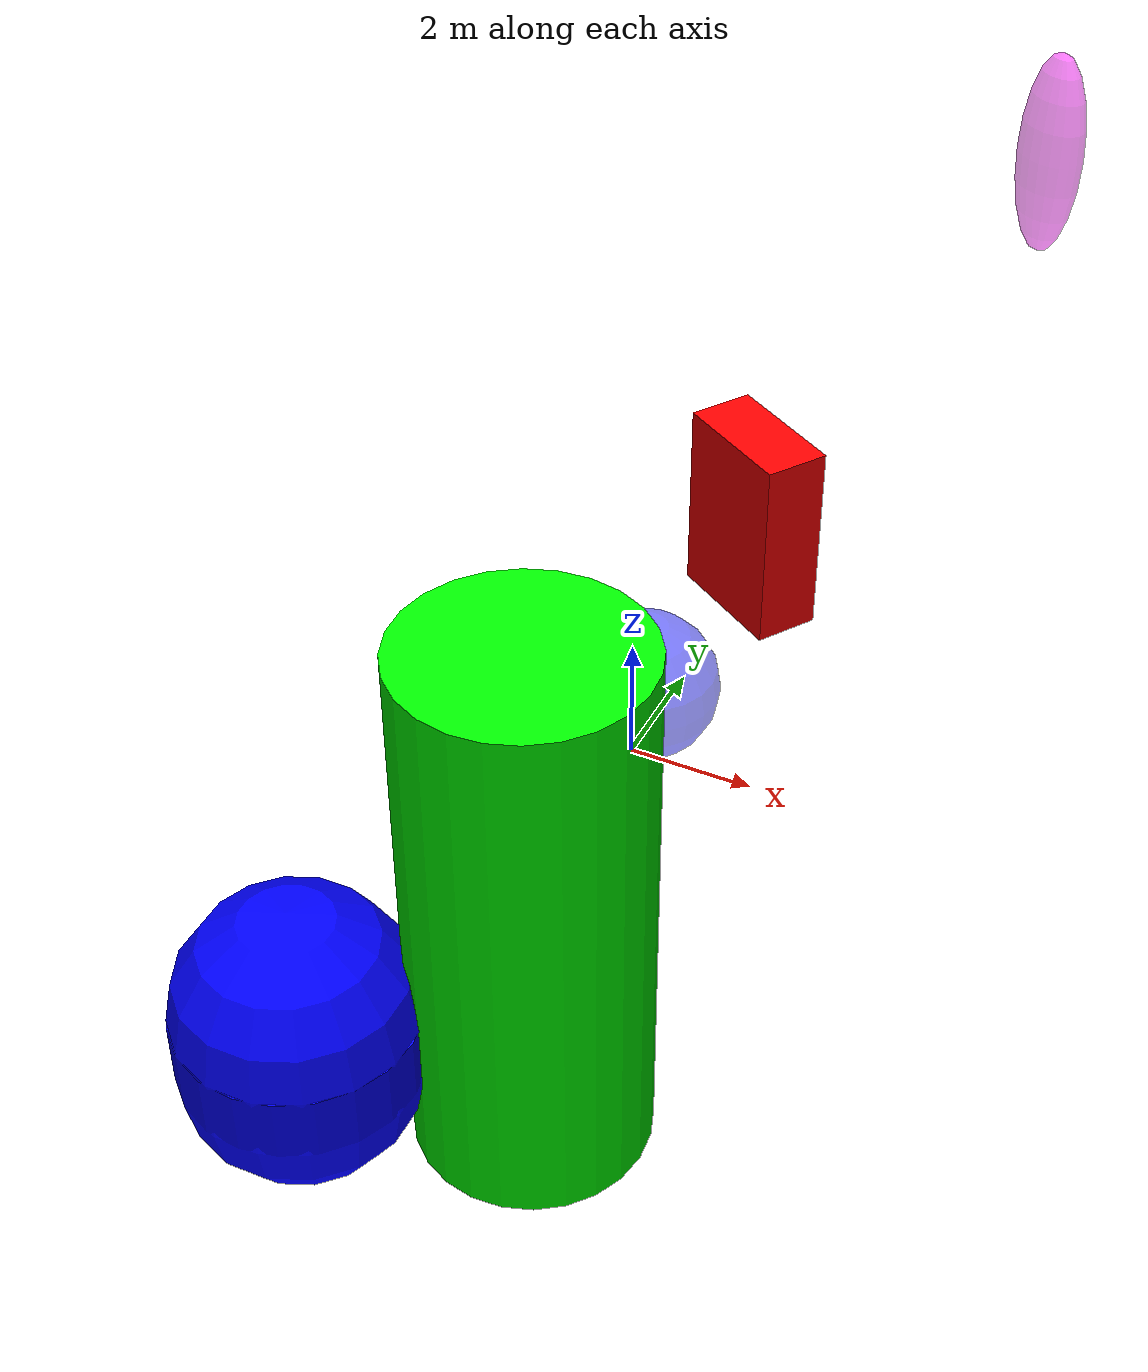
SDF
<?xml version="1.0" ?>
<sdf version="1.6">
  <world name="default">
    <plugin
      filename="gz-sim-apply-link-wrench-system"
      name="gz::sim::systems::ApplyLinkWrench">
    </plugin>

    <physics name="1ms" type="ode">
      <max_step_size>0.001</max_step_size>
      <real_time_factor>1</real_time_factor>
    </physics>

    <plugin
      filename="gz-sim-scene-broadcaster-system"
      name="gz::sim::systems::SceneBroadcaster">
      <!-- Publish at high frequency to test periodic changes -->
      <state_hertz>1000</state_hertz>
    </plugin>

    <gui fullscreen="0">

      <!-- 3D scene -->
      <plugin filename="MinimalScene" name="3D View">
        <gz-gui>
          <title>3D View</title>
          <property type="bool" key="showTitleBar">false</property>
          <property type="string" key="state">docked</property>
        </gz-gui>

        <engine>ogre</engine>
        <scene>scene</scene>
        <ambient_light>0.4 0.4 0.4</ambient_light>
        <background_color>0.8 0.8 0.8</background_color>
        <camera_pose>-6 0 6 0 0.5 0</camera_pose>
      </plugin>

    </gui>

    <light type="directional" name="sun">
      <cast_shadows>true</cast_shadows>
      <pose>0 0 10 0 0 0</pose>
      <diffuse>0.8 0.8 0.8 1</diffuse>
      <specular>0.2 0.2 0.2 1</specular>
      <attenuation>
        <range>1000</range>
        <constant>0.9</constant>
        <linear>0.01</linear>
        <quadratic>0.001</quadratic>
      </attenuation>
      <direction>-0.5 0.1 -0.9</direction>
    </light>

    <model name="box">
      <pose>1 2 3 0 0 1</pose>
      <link name="box_link">
        <inertial>
          <inertia>
            <ixx>1</ixx>
            <ixy>0</ixy>
            <ixz>0</ixz>
            <iyy>1</iyy>
            <iyz>0</iyz>
            <izz>1</izz>
          </inertia>
          <mass>1.0</mass>
        </inertial>
        <pose>0.1 0.1 0.1 0 0 0</pose>
        <collision name="box_collision">
          <pose>0.11 0.11 0.11 0 0 0</pose>
          <geometry>
            <box>
              <size>3 4 5</size>
            </box>
          </geometry>
        </collision>

        <visual name="box_visual">
          <laser_retro>1150</laser_retro>
          <pose>0.12 0.12 0.12 0 0 0</pose>
          <geometry>
            <box>
              <size>1 2 3</size>
            </box>
          </geometry>
          <material>
            <ambient>1 0 0 1</ambient>
            <diffuse>1 0 0 1</diffuse>
            <specular>1 0 0 1</specular>
          </material>
        </visual>
      </link>
    </model>

    <model name="cylinder">
      <pose>-1 -2 -3 0 0 1</pose>
      <link name="cylinder_link">
        <pose>0.2 0.2 0.2 0 0 0</pose>
        <inertial>
          <inertia>
            <ixx>2</ixx>
            <ixy>0</ixy>
            <ixz>0</ixz>
            <iyy>2</iyy>
            <iyz>0</iyz>
            <izz>2</izz>
          </inertia>
          <mass>2.0</mass>
        </inertial>
        <collision name="cylinder_collision">
          <pose>0.21 0.21 0.21 0 0 0</pose>
          <geometry>
            <cylinder>
              <radius>0.2</radius>
              <length>0.1</length>
            </cylinder>
          </geometry>
        </collision>

        <visual name="cylinder_visual">
          <laser_retro>1654</laser_retro>
          <pose>0.22 0.22 0.22 0 0 0</pose>
          <geometry>
            <cylinder>
              <radius>2.1</radius>
              <length>10.2</length>
            </cylinder>
          </geometry>
          <material>
            <ambient>0 1 0 1</ambient>
            <diffuse>0 1 0 1</diffuse>
            <specular>0 1 0 1</specular>
          </material>
        </visual>
      </link>
    </model>

    <model name="sphere">
      <pose>0 0 0 0 0 1</pose>
      <link name="sphere_link">
        <pose>0.3 0.3 0.3 0 0 0</pose>
        <inertial>
          <inertia>
            <ixx>3</ixx>
            <ixy>0</ixy>
            <ixz>0</ixz>
            <iyy>3</iyy>
            <iyz>0</iyz>
            <izz>3</izz>
          </inertia>
          <mass>3.0</mass>
        </inertial>
        <collision name="sphere_collision">
          <pose>0.31 0.31 0.31 0 0 0</pose>
          <geometry>
            <sphere>
              <radius>23.4</radius>
            </sphere>
          </geometry>
        </collision>

        <visual name="sphere_visual">
          <laser_retro>50</laser_retro>
          <pose>0.32 0.32 0.32 0 0 0</pose>
          <transparency>0.5</transparency>
          <cast_shadows>false</cast_shadows>
          <geometry>
            <sphere>
              <radius>1.2</radius>
            </sphere>
          </geometry>
          <material>
            <ambient>0 0 1 1</ambient>
            <diffuse>0 0 1 1</diffuse>
            <specular>0 0 1 1</specular>
          </material>
        </visual>
      </link>
    </model>

    <model name="capsule">
      <pose>-4 -5 -6 0 0 1</pose>
      <link name="capsule_link">
        <pose>0.5 0.5 0.5 0 0 0</pose>
        <inertial>
          <inertia>
            <ixx>2</ixx>
            <ixy>0</ixy>
            <ixz>0</ixz>
            <iyy>2</iyy>
            <iyz>0</iyz>
            <izz>2</izz>
          </inertia>
          <mass>2.0</mass>
        </inertial>
        <collision name="capsule_collision">
          <pose>0.51 0.51 0.51 0 0 0</pose>
          <geometry>
            <capsule>
              <radius>0.23</radius>
              <length>0.14</length>
            </capsule>
          </geometry>
        </collision>
        <visual name="capsule_visual">
          <laser_retro>6.54</laser_retro>
          <pose>0.52 0.52 0.52 0 0 0</pose>
          <geometry>
            <capsule>
              <radius>2.12</radius>
              <length>1.23</length>
            </capsule>
          </geometry>
          <material>
            <ambient>0 0 1 1</ambient>
            <diffuse>0 0 1 1</diffuse>
            <specular>0 1 0 1</specular>
          </material>
        </visual>
      </link>
    </model>

    <model name="ellipsoid">
      <pose>4 5 6 0 0 1</pose>
      <link name="ellipsoid_link">
        <pose>0.8 0.8 0.8 0 0 0</pose>
        <inertial>
          <inertia>
            <ixx>3</ixx>
            <ixy>0</ixy>
            <ixz>0</ixz>
            <iyy>3</iyy>
            <iyz>0</iyz>
            <izz>3</izz>
          </inertia>
          <mass>3.0</mass>
        </inertial>
        <collision name="ellipsoid_collision">
          <pose>0.81 0.81 0.81 0 0 0</pose>
          <geometry>
            <ellipsoid>
              <radii>0.4 0.6 1.6</radii>
            </ellipsoid>
          </geometry>
        </collision>
        <visual name="ellipsoid_visual">
          <laser_retro>3.21</laser_retro>
          <pose>0.82 0.82 0.82 0 0 0</pose>
          <transparency>0.5</transparency>
          <cast_shadows>false</cast_shadows>
          <geometry>
            <ellipsoid>
              <radii>0.4 0.6 1.6</radii>
            </ellipsoid>
          </geometry>
          <material>
            <ambient>1 0 1 1</ambient>
            <diffuse>1 0 1 1</diffuse>
            <specular>1 0 1 1</specular>
          </material>
        </visual>
      </link>
    </model>

  </world>
</sdf>
